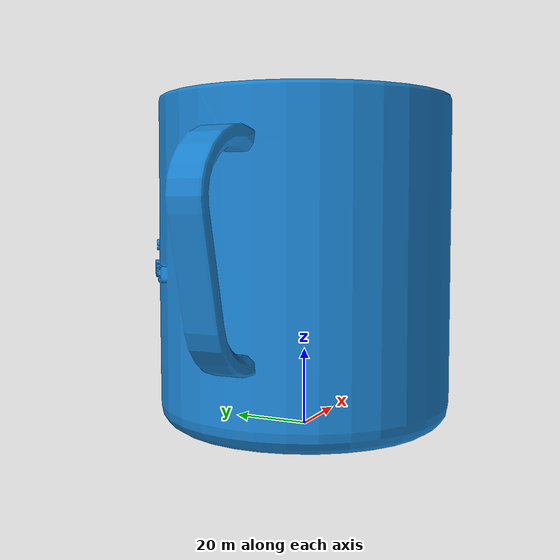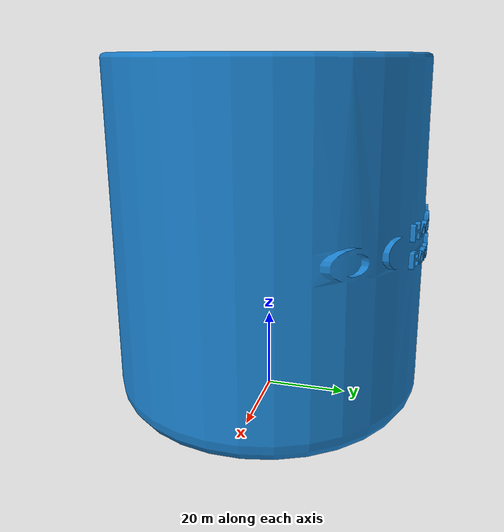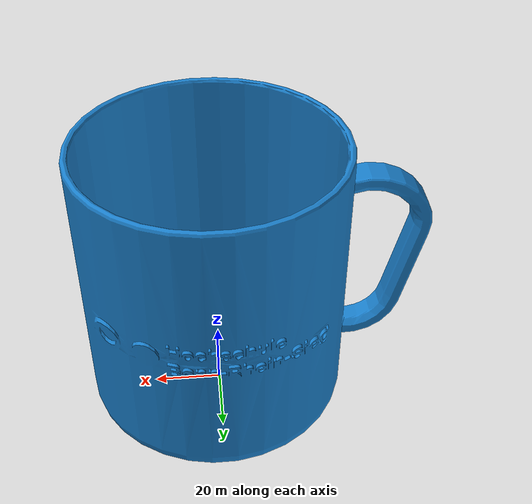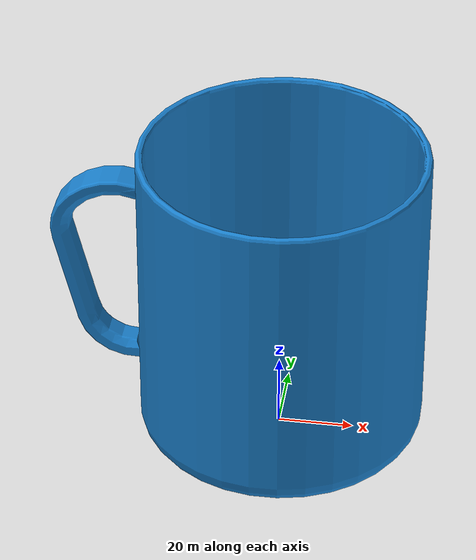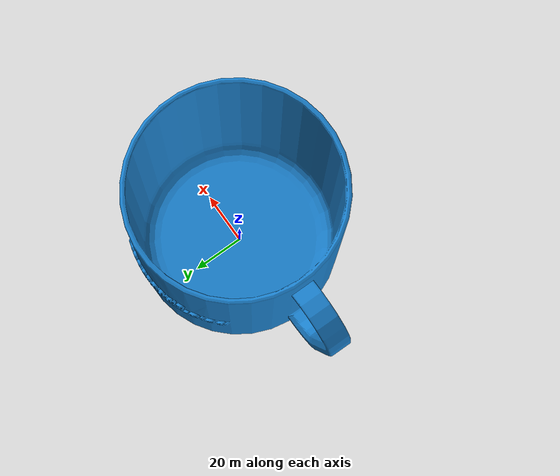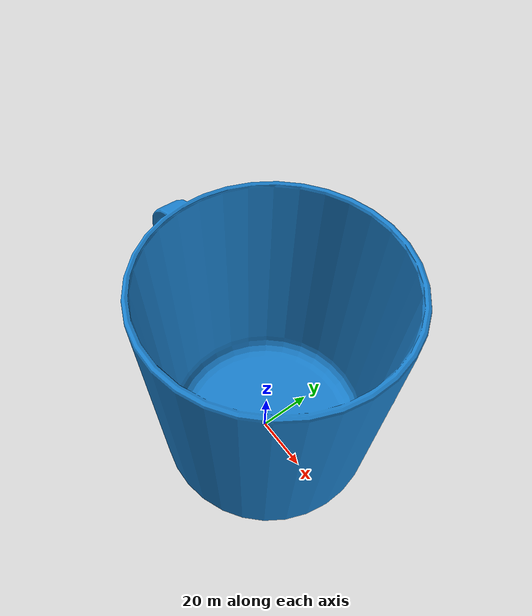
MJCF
<mujoco model="panda scene">

    <asset>
        <mesh name="mug_mesh" file="objects/mug/meshes/mug.stl" scale="1 1 1"/>

        <mesh name="m_contact0_mesh" file="objects/mug/meshes/contact0.stl"/>
        <mesh name="m_contact1_mesh" file="objects/mug/meshes/contact1.stl"/>
        <mesh name="m_contact2_mesh" file="objects/mug/meshes/contact2.stl"/>
        <mesh name="m_contact3_mesh" file="objects/mug/meshes/contact3.stl"/>
        <mesh name="m_contact4_mesh" file="objects/mug/meshes/contact4.stl"/>
        <mesh name="m_contact5_mesh" file="objects/mug/meshes/contact5.stl"/>
        <mesh name="m_contact6_mesh" file="objects/mug/meshes/contact6.stl"/>
        <mesh name="m_contact7_mesh" file="objects/mug/meshes/contact7.stl"/>
        <mesh name="m_contact8_mesh" file="objects/mug/meshes/contact8.stl"/>
        <mesh name="m_contact9_mesh" file="objects/mug/meshes/contact9.stl"/>
        <mesh name="m_contact10_mesh" file="objects/mug/meshes/contact10.stl"/>
        <mesh name="m_contact11_mesh" file="objects/mug/meshes/contact11.stl"/>
        <mesh name="m_contact12_mesh" file="objects/mug/meshes/contact12.stl"/>
        <mesh name="m_contact13_mesh" file="objects/mug/meshes/contact13.stl"/>
    </asset>

    <worldbody>
        <body name="mug" pos="0.5 0.2 0.9">
            <freejoint/>

            <!-- VISUAL (sem massa nem densidade) -->
            <geom name="mug_visual"
                  type="mesh"
                  mesh="mug_mesh"
                  rgba="0.1 0.5 0.8 1"
                  contype="0"
                  conaffinity="0"
                  group="1"/>

            <!-- INÉRCIA FÍSICA REALISTA -->
            <inertial
                pos="0 0 0.05"
                mass="0.3"
                diaginertia="0.003 0.003 0.002"/>

            <!-- COLISÕES (mais suaves e estáveis) -->
            <geom name="m_collision_c0"  type="mesh" mesh="m_contact0_mesh"  rgba="0 0 0 0"
                  condim="3" friction="1.2 0.01 0.0005" solref="0.02 1" solimp="0.95 0.99 0.002"/>

            <geom name="m_collision_c1"  type="mesh" mesh="m_contact1_mesh"  rgba="0 0 0 0"
                  condim="3" friction="1.2 0.01 0.0005" solref="0.02 1" solimp="0.95 0.99 0.002"/>

            <geom name="m_collision_c2"  type="mesh" mesh="m_contact2_mesh"  rgba="0 0 0 0"
                  condim="3" friction="1.2 0.01 0.0005" solref="0.02 1" solimp="0.95 0.99 0.002"/>

            <geom name="m_collision_c3"  type="mesh" mesh="m_contact3_mesh"  rgba="0 0 0 0"
                  condim="3" friction="1.2 0.01 0.0005" solref="0.02 1" solimp="0.95 0.99 0.002"/>

            <geom name="m_collision_c4"  type="mesh" mesh="m_contact4_mesh"  rgba="0 0 0 0"
                  condim="3" friction="1.2 0.01 0.0005" solref="0.02 1" solimp="0.95 0.99 0.002"/>

            <geom name="m_collision_c5"  type="mesh" mesh="m_contact5_mesh"  rgba="0 0 0 0"
                  condim="3" friction="1.2 0.01 0.0005" solref="0.02 1" solimp="0.95 0.99 0.002"/>

            <geom name="m_collision_c6"  type="mesh" mesh="m_contact6_mesh"  rgba="0 0 0 0"
                  condim="3" friction="1.2 0.01 0.0005" solref="0.02 1" solimp="0.95 0.99 0.002"/>

            <geom name="m_collision_c7"  type="mesh" mesh="m_contact7_mesh"  rgba="0 0 0 0"
                  condim="3" friction="1.2 0.01 0.0005" solref="0.02 1" solimp="0.95 0.99 0.002"/>

            <geom name="m_collision_c8"  type="mesh" mesh="m_contact8_mesh"  rgba="0 0 0 0"
                  condim="3" friction="1.2 0.01 0.0005" solref="0.02 1" solimp="0.95 0.99 0.002"/>

            <geom name="m_collision_c9"  type="mesh" mesh="m_contact9_mesh"  rgba="0 0 0 0"
                  condim="3" friction="1.2 0.01 0.0005" solref="0.02 1" solimp="0.95 0.99 0.002"/>

            <geom name="m_collision_c10" type="mesh" mesh="m_contact10_mesh" rgba="0 0 0 0"
                  condim="3" friction="1.2 0.01 0.0005" solref="0.02 1" solimp="0.95 0.99 0.002"/>

            <geom name="m_collision_c11" type="mesh" mesh="m_contact11_mesh" rgba="0 0 0 0"
                  condim="3" friction="1.2 0.01 0.0005" solref="0.02 1" solimp="0.95 0.99 0.002"/>

            <geom name="m_collision_c12" type="mesh" mesh="m_contact12_mesh" rgba="0 0 0 0"
                  condim="3" friction="1.2 0.01 0.0005" solref="0.02 1" solimp="0.95 0.99 0.002"/>

            <geom name="m_collision_c13" type="mesh" mesh="m_contact13_mesh" rgba="0 0 0 0"
                  condim="3" friction="1.2 0.01 0.0005" solref="0.02 1" solimp="0.95 0.99 0.002"/>

        </body>
    </worldbody>

</mujoco>
